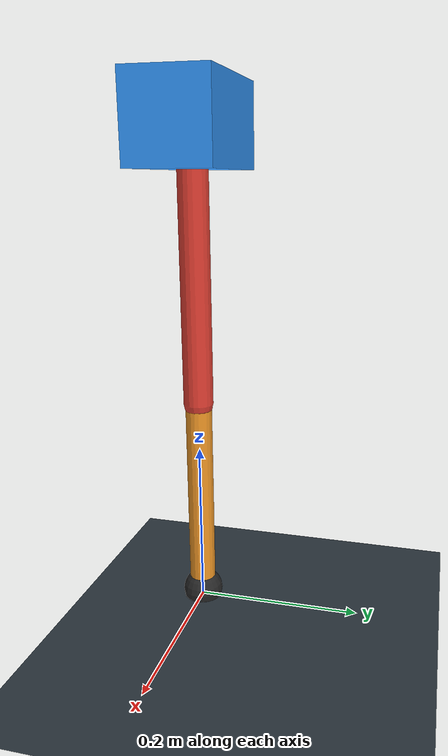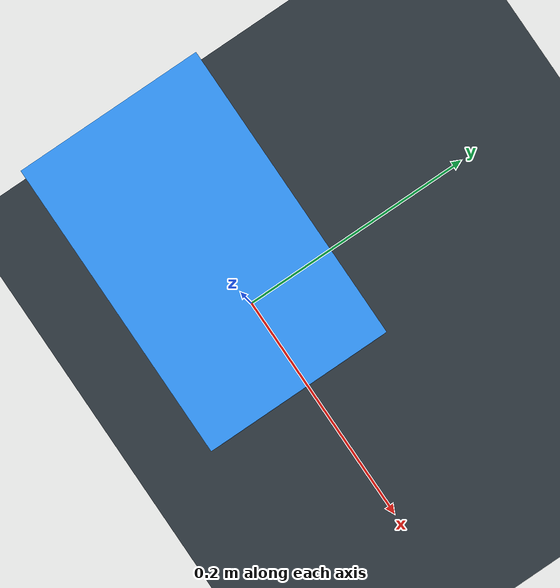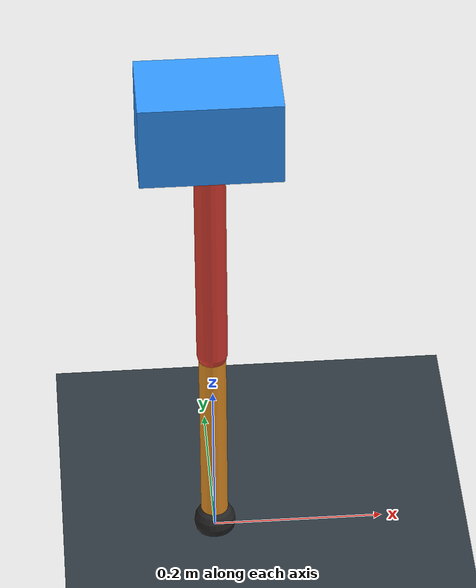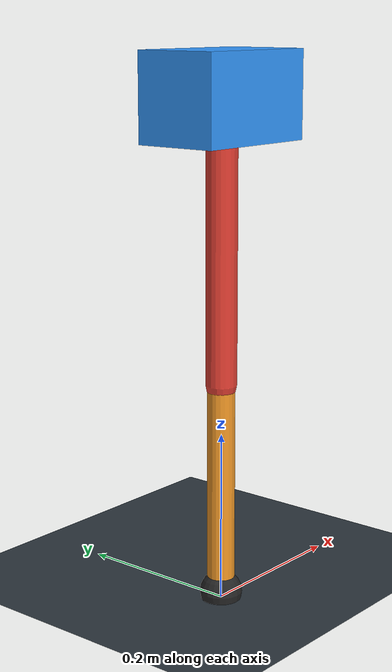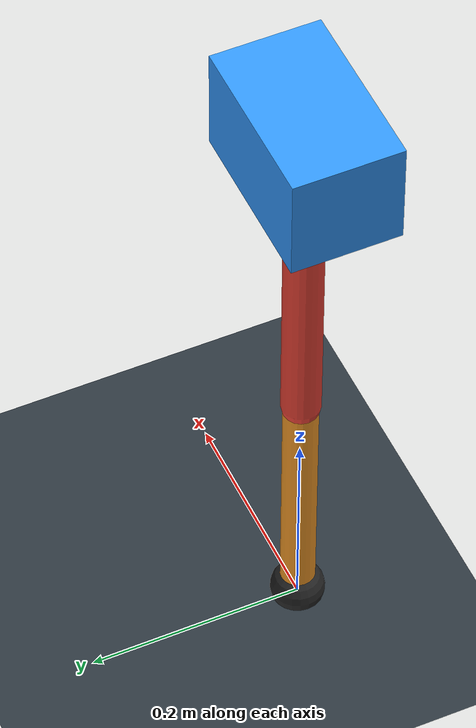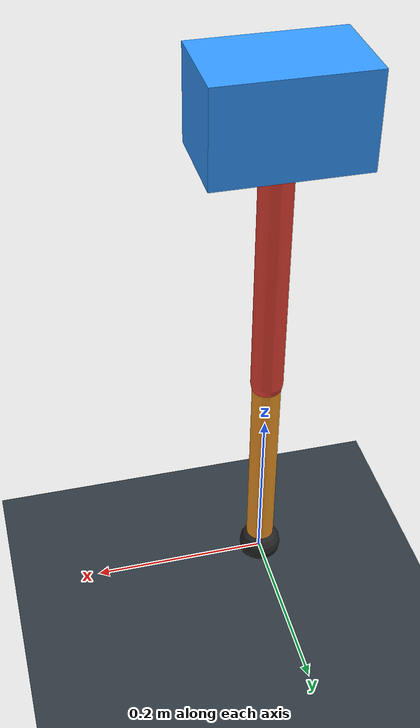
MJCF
<mujoco model="single_axis_two_bar">
  <compiler angle="radian" inertiafromgeom="true"/>
  <option timestep="0.001" integrator="implicitfast" gravity="0 0 -9.81"/>
  <default>
    <joint damping="0.08"/>
    <geom friction="1.2 0.01 0.0001" condim="3"/>
  </default>
  <worldbody>
    <geom name="floor" type="plane" size="5 5 0.1" rgba="0.18 0.22 0.25 1"/>
    <body name="carriage" pos="0 0 0.5846422616214322">
      <joint name="pole_slide" type="slide" axis="0 0 1"/>
      <geom name="payload" type="box" size="0.08 0.05 0.05" mass="3.8649323567408107" rgba="0.2 0.6 1 1"/>
      <body name="thigh" pos="0 0 0">
        <joint name="hip" type="hinge" axis="0 1 0"/>
        <geom name="thigh_link" type="capsule" fromto="0 0 0 0 0 -0.325091720291604" size="0.018" mass="0.23163214641584817" rgba="0.9 0.25 0.2 1"/>
        <body name="shank" pos="0 0 -0.325091720291604">
          <joint name="knee" type="hinge" axis="0 1 0"/>
          <geom name="shank_link" type="capsule" fromto="0 0 0 0 0 -0.25185906488513016" size="0.016" mass="0.17945291175457156" rgba="0.95 0.6 0.15 1"/>
          <geom name="foot" type="sphere" pos="0 0 -0.25185906488513016" size="0.025" mass="0.03" rgba="0.15 0.15 0.15 1"/>
          <site name="toe" pos="0 0 -0.25185906488513016" size="0.008"/>
        </body>
      </body>
    </body>
  </worldbody>
  <actuator>
    <motor name="hip_motor" joint="hip" ctrlrange="-18.16535426797045 18.16535426797045"/>
    <motor name="knee_motor" joint="knee" ctrlrange="-127.38102191071282 127.38102191071282"/>
  </actuator>
</mujoco>
